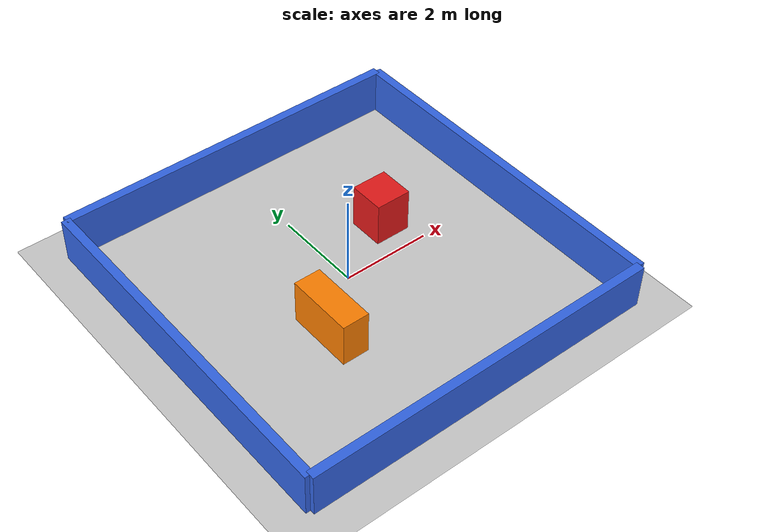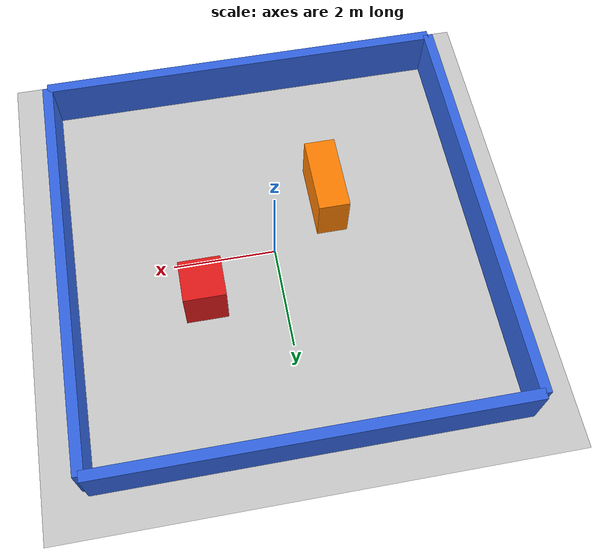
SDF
<?xml version="1.0"?>
<sdf version="1.6">
  <world name="v550_room">

    <!-- 增加光束，更容易显示障碍物与阴影 -->
    <light type="directional" name="sun">
    <cast_shadows>true</cast_shadows>
    <pose>0 0 10 0 0 0</pose>

    <diffuse>0.9 0.9 0.9 1.0</diffuse>
    <specular>0.2 0.2 0.2 1.0</specular>

    <attenuation>
        <range>1000</range>
        <constant>0.9</constant>
        <linear>0.01</linear>
        <quadratic>0.001</quadratic>
    </attenuation>

    <direction>-0.5 0.1 -0.9</direction>
    </light>

    <!-- 直接定义无限地面，不访问 Gazebo 在线模型库 -->
    <model name="ground_plane">
    <static>true</static>

    <link name="link">
        <collision name="collision">
        <geometry>
            <plane>
            <normal>0 0 1</normal>
            <size>100 100</size>
            </plane>
        </geometry>
        </collision>

        <visual name="visual">
        <geometry>
            <plane>
            <normal>0 0 1</normal>
            <size>100 100</size>
            </plane>
        </geometry>
        <material>
            <!-- 浅灰色地面 -->
            <ambient>0.4 0.4 0.4 1.0</ambient>
            <diffuse>0.8 0.8 0.8 1.0</diffuse>
            <specular>0.1 0.1 0.1 1.0</specular>
        </material>

        </visual>
    </link>
    </model>

    <!-- 北墙 -->
    <model name="wall_north">
        <static>true</static>
        <pose>0 4 0.5 0 0 0</pose>

        <link name="link">
            <collision name="collision">
                <geometry>
                    <box><size>8 0.2 1.0</size></box>
                </geometry>
            </collision>

            <visual name="visual">
                <geometry>
                    <box><size>8 0.2 1.0</size></box>
                </geometry>
                <material>
                      <!-- 蓝色墙体 -->
                    <ambient>0.1 0.2 0.5 1.0</ambient>
                    <diffuse>0.2 0.4 0.9 1.0</diffuse>
                    <specular>0.2 0.2 0.2 1.0</specular>
                </material>
            </visual>
        </link>
    </model>

    <!-- 南墙 -->
     <model name="wall_south">
        <static>true</static>
        <pose>0 -4 0.5 0 0 0</pose>

        <link name="link">
            <collision name="collision">
                <geometry>
                    <box><size>8 0.2 1.0</size></box>
                </geometry>
            </collision>

            <visual name="visual">
                <geometry>
                    <box><size>8 0.2 1.0</size></box>
                </geometry>
                <material>
                    <ambient>0.1 0.2 0.5 1.0</ambient>
                    <diffuse>0.2 0.4 0.9 1.0</diffuse>
                    <specular>0.2 0.2 0.2 1.0</specular>
                </material>
            </visual>
        </link>
     </model>

     <!-- 东侧墙 -->
    <model name="wall_east">
      <static>true</static>
      <pose>4 0 0.5 0 0 1.5708</pose>

      <link name="link">
        <collision name="collision">
          <geometry>
            <box><size>8 0.2 1.0</size></box>
          </geometry>
        </collision>

        <visual name="visual">
            <geometry>
                <box><size>8 0.2 1.0</size></box>
            </geometry>
            <material>
                <ambient>0.1 0.2 0.5 1.0</ambient>
                <diffuse>0.2 0.4 0.9 1.0</diffuse>
                <specular>0.2 0.2 0.2 1.0</specular>
            </material>
        </visual>
      </link>
    </model>

    <!-- 西侧墙 -->
    <model name="wall_west">
      <static>true</static>
      <pose>-4 0 0.5 0 0 1.5708</pose>

      <link name="link">
        <collision name="collision">
          <geometry>
            <box><size>8 0.2 1.0</size></box>
          </geometry>
        </collision>

        <visual name="visual">
            <geometry>
                <box><size>8 0.2 1.0</size></box>
            </geometry>
            <material>
                <ambient>0.1 0.2 0.5 1.0</ambient>
                <diffuse>0.2 0.4 0.9 1.0</diffuse>
                <specular>0.2 0.2 0.2 1.0</specular>
            </material>
        </visual>
      </link>
    </model>

    <!-- 中间障碍物 1 -->
    <model name="obstacle_1">
      <static>true</static>
      <pose>1.5 0.8 0.5 0 0 0</pose>

      <link name="link">
        <collision name="collision">
          <geometry>
            <box><size>0.8 0.8 1.0</size></box>
          </geometry>
        </collision>

        <visual name="visual">
            <geometry>
                <box><size>0.8 0.8 1.0</size></box>
            </geometry>
            <material>
                <ambient>0.5 0.0 0.0 1.0</ambient>
                <diffuse>0.9 0.1 0.1 1.0</diffuse>
                <specular>0.2 0.2 0.2 1.0</specular>
                <emissive>0.2 0.0 0.0 1.0</emissive>
            </material>
        </visual>
      </link>
    </model>

    <!-- 中间障碍物 2 -->
    <model name="obstacle_2">
      <static>true</static>
      <pose>-1.2 -1.0 0.5 0 0 0</pose>

      <link name="link">
        <collision name="collision">
          <geometry>
            <box><size>0.6 1.5 1.0</size></box>
          </geometry>
        </collision>

        <visual name="visual">
          <geometry>
            <box><size>0.6 1.5 1.0</size></box>
          </geometry>
          <material>
            <ambient>0.6 0.3 0.0 1.0</ambient>
            <diffuse>1.0 0.5 0.0 1.0</diffuse>
            <specular>0.2 0.2 0.2 1.0</specular>
            <emissive>0.2 0.1 0.0 1.0</emissive>
          </material>
        </visual>
      </link>
    </model>

  </world>
</sdf>
